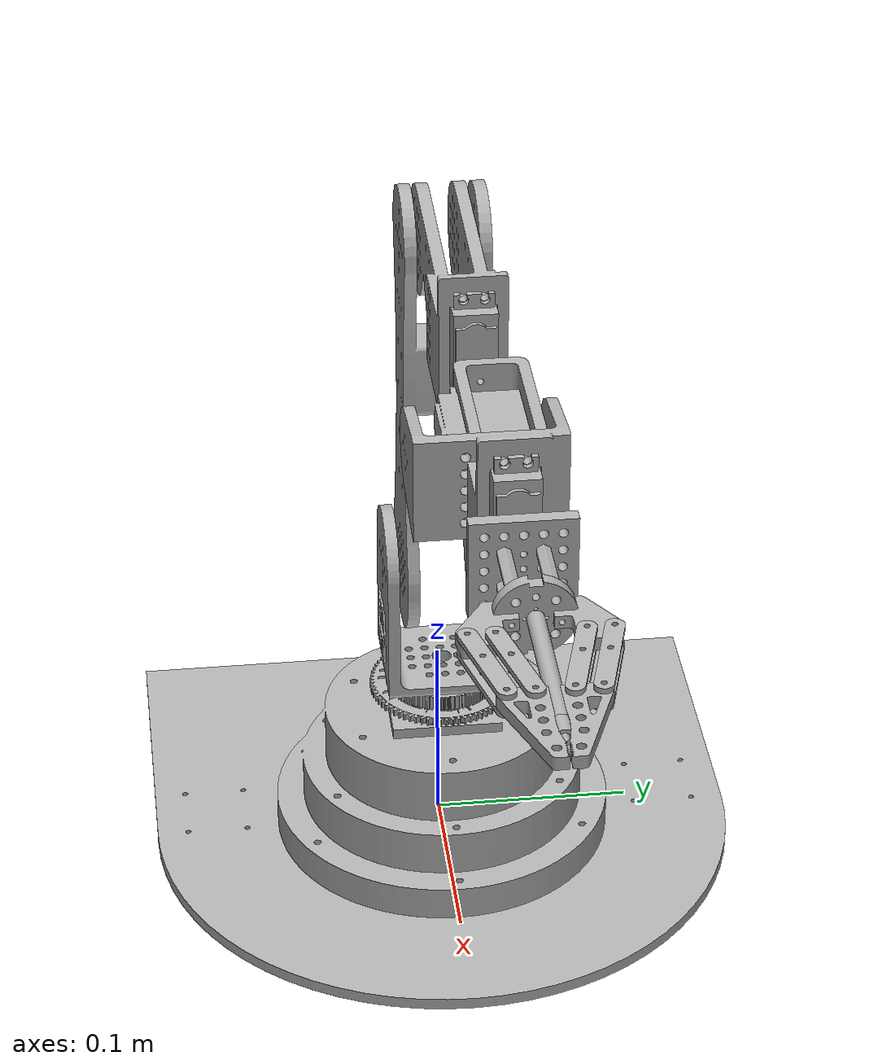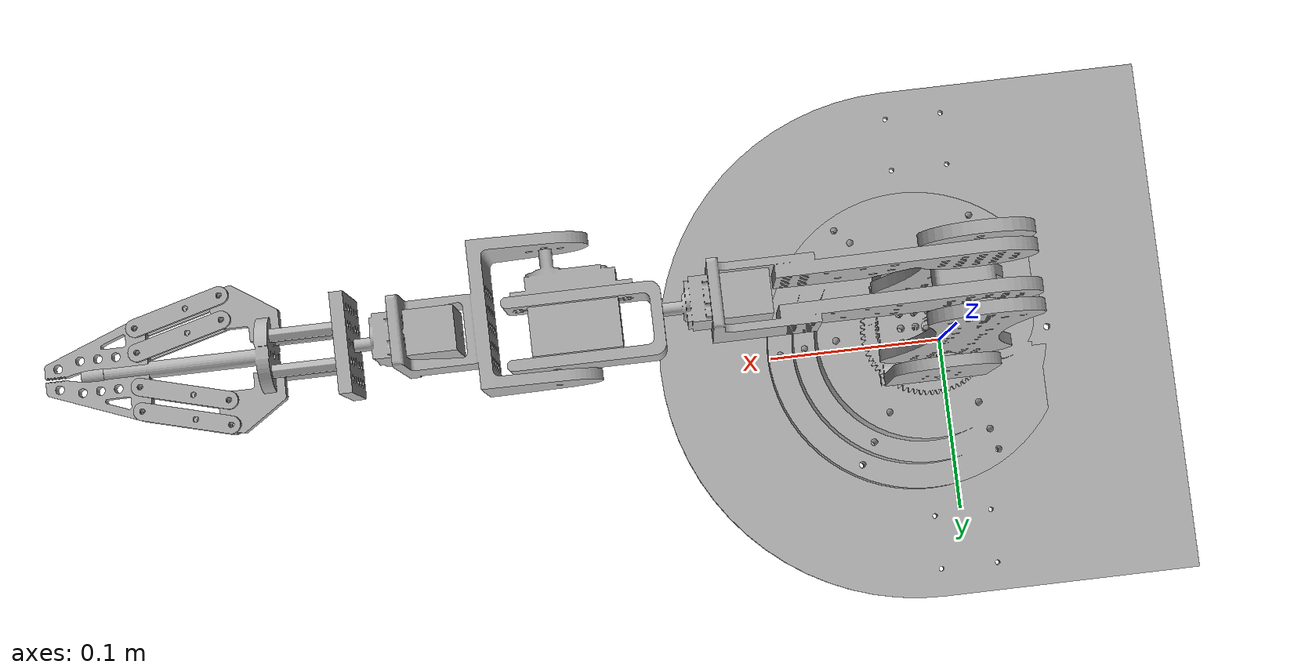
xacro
<?xml version="1.0" ?>
<robot name="ra6" xmlns:xacro="http://www.ros.org/wiki/xacro">
constant double pi = 3.14
<xacro:include filename="$(find ra6_description)/urdf/materials.xacro" />
<xacro:include filename="$(find ra6_description)/urdf/ra6.trans" />
<xacro:include filename="$(find ra6_description)/urdf/ra6.gazebo" />
<link name="world" />

  <joint name="world_joint" type="fixed">
    <parent link="world" />
    <child link = "base_link" />
    <origin xyz="0.0 0.0 0.0" rpy="0.0 0.0 0.0" />
  </joint>

<link name="base_link">
  <inertial>
    <origin rpy="0 0 0" xyz="0.001945238815569592 2.5277680393287483e-10 0.0029999999999930347"/>
    <mass value="0.5695940432953642"/>
    <inertia ixx="0.003816" ixy="0.0" ixz="0.0" iyy="0.003709" iyz="0.0" izz="0.007522"/>
  </inertial>
  <visual>
    <origin rpy="0 0 0" xyz="0 0 0"/>
    <geometry>
      <mesh filename="package://ra6_description/meshes/base_link.stl" scale="0.001 0.001 0.001"/>
    </geometry>
    <material name="silver"/>
  </visual>
  <collision>
    <origin rpy="0 0 0" xyz="0 0 0"/>
    <geometry>
      <mesh filename="package://ra6_description/meshes/base_link.stl" scale="0.001 0.001 0.001"/>
    </geometry>
  </collision>
</link>

<link name="link_1_1">
  <inertial>
    <origin rpy="0 0 0" xyz="0.0047535352324167834 1.8697271685685592e-10 0.032315463866336866"/>
    <mass value="0.986632768311051"/>
    <inertia ixx="0.002238" ixy="0.0" ixz="4.5e-05" iyy="0.001937" iyz="0.0" izz="0.003229"/>
  </inertial>
  <visual>
    <origin rpy="0 0 0" xyz="-0.016 -0.0 -0.006"/>
    <geometry>
      <mesh filename="package://ra6_description/meshes/link_1_1.stl" scale="0.001 0.001 0.001"/>
    </geometry>
    <material name="silver"/>
  </visual>
  <collision>
    <origin rpy="0 0 0" xyz="-0.016 -0.0 -0.006"/>
    <geometry>
      <mesh filename="package://ra6_description/meshes/link_1_1.stl" scale="0.001 0.001 0.001"/>
    </geometry>
  </collision>
</link>

<link name="link_2_1">
  <inertial>
    <origin rpy="0 0 0" xyz="-4.917767261157502e-07 1.868783618167755e-10 0.011643712562805747"/>
    <mass value="0.1359095393443759"/>
    <inertia ixx="1.6e-05" ixy="0.0" ixz="0.0" iyy="1.6e-05" iyz="0.0" izz="1.9e-05"/>
  </inertial>
  <visual>
    <origin rpy="0 0 0" xyz="-0.016 -0.0 -0.066"/>
    <geometry>
      <mesh filename="package://ra6_description/meshes/link_2_1.stl" scale="0.001 0.001 0.001"/>
    </geometry>
    <material name="silver"/>
  </visual>
  <collision>
    <origin rpy="0 0 0" xyz="-0.016 -0.0 -0.066"/>
    <geometry>
      <mesh filename="package://ra6_description/meshes/link_2_1.stl" scale="0.001 0.001 0.001"/>
    </geometry>
  </collision>
</link>

<link name="link_3_1">
  <inertial>
    <origin rpy="0 0 0" xyz="-5.1498464368957e-07 -3.4576515443776564e-05 0.03855502060775154"/>
    <mass value="0.734301344058547"/>
    <inertia ixx="0.0011" ixy="-0.0" ixz="0.0" iyy="0.000886" iyz="-4e-06" izz="0.000593"/>
  </inertial>
  <visual>
    <origin rpy="0 0 0" xyz="-0.016 -0.0 -0.09"/>
    <geometry>
      <mesh filename="package://ra6_description/meshes/link_3_1.stl" scale="0.001 0.001 0.001"/>
    </geometry>
    <material name="silver"/>
  </visual>
  <collision>
    <origin rpy="0 0 0" xyz="-0.016 -0.0 -0.09"/>
    <geometry>
      <mesh filename="package://ra6_description/meshes/link_3_1.stl" scale="0.001 0.001 0.001"/>
    </geometry>
  </collision>
</link>

<link name="link_4_1">
  <inertial>
    <origin rpy="0 0 0" xyz="-4.917794473036086e-07 -0.0014999998130873285 -5.1586790394964055e-12"/>
    <mass value="0.0015536746468328695"/>
    <inertia ixx="0.0" ixy="0.0" ixz="0.0" iyy="0.0" iyz="0.0" izz="0.0"/>
  </inertial>
  <visual>
    <origin rpy="0 0 0" xyz="-0.016 -0.024 -0.1685"/>
    <geometry>
      <mesh filename="package://ra6_description/meshes/link_4_1.stl" scale="0.001 0.001 0.001"/>
    </geometry>
    <material name="silver"/>
  </visual>
  <collision>
    <origin rpy="0 0 0" xyz="-0.016 -0.024 -0.1685"/>
    <geometry>
      <mesh filename="package://ra6_description/meshes/link_4_1.stl" scale="0.001 0.001 0.001"/>
    </geometry>
  </collision>
</link>

<link name="link_5_1">
  <inertial>
    <origin rpy="0 0 0" xyz="2.5550228582492396e-05 -0.02074999941018064 0.08450695857810112"/>
    <mass value="0.18341801530628282"/>
    <inertia ixx="0.00083" ixy="-0.0" ixz="-0.0" iyy="0.000814" iyz="0.0" izz="8.3e-05"/>
  </inertial>
  <visual>
    <origin rpy="0 0 0" xyz="-0.016 -0.021 -0.1685"/>
    <geometry>
      <mesh filename="package://ra6_description/meshes/link_5_1.stl" scale="0.001 0.001 0.001"/>
    </geometry>
    <material name="silver"/>
  </visual>
  <collision>
    <origin rpy="0 0 0" xyz="-0.016 -0.021 -0.1685"/>
    <geometry>
      <mesh filename="package://ra6_description/meshes/link_5_1.stl" scale="0.001 0.001 0.001"/>
    </geometry>
  </collision>
</link>

<link name="link_6_1">
  <inertial>
    <origin rpy="0 0 0" xyz="-4.917651489078079e-07 -0.0014999998130856788 -3.82598952519686e-11"/>
    <mass value="0.0015536746468328695"/>
    <inertia ixx="0.0" ixy="0.0" ixz="0.0" iyy="0.0" iyz="0.0" izz="0.0"/>
  </inertial>
  <visual>
    <origin rpy="0 0 0" xyz="-0.016 -0.015 -0.3485"/>
    <geometry>
      <mesh filename="package://ra6_description/meshes/link_6_1.stl" scale="0.001 0.001 0.001"/>
    </geometry>
    <material name="silver"/>
  </visual>
  <collision>
    <origin rpy="0 0 0" xyz="-0.016 -0.015 -0.3485"/>
    <geometry>
      <mesh filename="package://ra6_description/meshes/link_6_1.stl" scale="0.001 0.001 0.001"/>
    </geometry>
  </collision>
</link>

<link name="link_7_1">
  <inertial>
    <origin rpy="0 0 0" xyz="0.050456556016615556 -0.011710659258667289 0.0013142964981623928"/>
    <mass value="0.08989065409828118"/>
    <inertia ixx="2.9e-05" ixy="1e-06" ixz="-4e-06" iyy="0.000181" iyz="0.0" izz="0.000171"/>
  </inertial>
  <visual>
    <origin rpy="0 0 0" xyz="-0.016 -0.012 -0.3485"/>
    <geometry>
      <mesh filename="package://ra6_description/meshes/link_7_1.stl" scale="0.001 0.001 0.001"/>
    </geometry>
    <material name="silver"/>
  </visual>
  <collision>
    <origin rpy="0 0 0" xyz="-0.016 -0.012 -0.3485"/>
    <geometry>
      <mesh filename="package://ra6_description/meshes/link_7_1.stl" scale="0.001 0.001 0.001"/>
    </geometry>
  </collision>
</link>

<link name="link_8_1">
  <inertial>
    <origin rpy="0 0 0" xyz="-0.00805656894949483 0.004750000186925427 -0.02464885625301999"/>
    <mass value="0.2407180144714228"/>
    <inertia ixx="4.2e-05" ixy="0.0" ixz="1e-06" iyy="6.3e-05" iyz="0.0" izz="3.7e-05"/>
  </inertial>
  <visual>
    <origin rpy="0 0 0" xyz="-0.138641 0.00475 -0.383109"/>
    <geometry>
      <mesh filename="package://ra6_description/meshes/link_8_1.stl" scale="0.001 0.001 0.001"/>
    </geometry>
    <material name="silver"/>
  </visual>
  <collision>
    <origin rpy="0 0 0" xyz="-0.138641 0.00475 -0.383109"/>
    <geometry>
      <mesh filename="package://ra6_description/meshes/link_8_1.stl" scale="0.001 0.001 0.001"/>
    </geometry>
  </collision>
</link>

<link name="link_9_1">
  <inertial>
    <origin rpy="0 0 0" xyz="0.028870766333689513 0.007734910162192676 2.141239401898254e-07"/>
    <mass value="0.15826451533791172"/>
    <inertia ixx="4e-05" ixy="-5e-06" ixz="0.0" iyy="9.7e-05" iyz="0.0" izz="0.000108"/>
  </inertial>
  <visual>
    <origin rpy="0 0 0" xyz="-0.159641 -0.0 -0.3485"/>
    <geometry>
      <mesh filename="package://ra6_description/meshes/link_9_1.stl" scale="0.001 0.001 0.001"/>
    </geometry>
    <material name="silver"/>
  </visual>
  <collision>
    <origin rpy="0 0 0" xyz="-0.159641 -0.0 -0.3485"/>
    <geometry>
      <mesh filename="package://ra6_description/meshes/link_9_1.stl" scale="0.001 0.001 0.001"/>
    </geometry>
  </collision>
</link>

<link name="link_10_1">
  <inertial>
    <origin rpy="0 0 0" xyz="-0.024351421647754695 0.00805617844477384 -0.004749786152643376"/>
    <mass value="0.2407180144714228"/>
    <inertia ixx="3.7e-05" ixy="1e-06" ixz="-0.0" iyy="4.2e-05" iyz="-0.0" izz="6.3e-05"/>
  </inertial>
  <visual>
    <origin rpy="0 0 0" xyz="-0.223391 0.012 -0.3535"/>
    <geometry>
      <mesh filename="package://ra6_description/meshes/link_10_1.stl" scale="0.001 0.001 0.001"/>
    </geometry>
    <material name="silver"/>
  </visual>
  <collision>
    <origin rpy="0 0 0" xyz="-0.223391 0.012 -0.3535"/>
    <geometry>
      <mesh filename="package://ra6_description/meshes/link_10_1.stl" scale="0.001 0.001 0.001"/>
    </geometry>
  </collision>
</link>

<link name="link_11_1">
  <inertial>
    <origin rpy="0 0 0" xyz="0.02892119873863902 0.02941371914384374 0.0011736127180591582"/>
    <mass value="0.39249068379170354"/>
    <inertia ixx="0.000282" ixy="-1.3e-05" ixz="-1.7e-05" iyy="0.000264" iyz="-2e-06" izz="0.000382"/>
  </inertial>
  <visual>
    <origin rpy="0 0 0" xyz="-0.209 0.033 -0.34875"/>
    <geometry>
      <mesh filename="package://ra6_description/meshes/link_11_1.stl" scale="0.001 0.001 0.001"/>
    </geometry>
    <material name="silver"/>
  </visual>
  <collision>
    <origin rpy="0 0 0" xyz="-0.209 0.033 -0.34875"/>
    <geometry>
      <mesh filename="package://ra6_description/meshes/link_11_1.stl" scale="0.001 0.001 0.001"/>
    </geometry>
  </collision>
</link>

<link name="link_12_1">
  <inertial>
    <origin rpy="0 0 0" xyz="-0.008056670005951172 0.0047492265461918535 -0.024648856254397666"/>
    <mass value="0.24071801447142827"/>
    <inertia ixx="4.2e-05" ixy="0.0" ixz="1e-06" iyy="6.3e-05" iyz="-0.0" izz="3.7e-05"/>
  </inertial>
  <visual>
    <origin rpy="0 0 0" xyz="-0.277154 0.004749 -0.383359"/>
    <geometry>
      <mesh filename="package://ra6_description/meshes/link_12_1.stl" scale="0.001 0.001 0.001"/>
    </geometry>
    <material name="silver"/>
  </visual>
  <collision>
    <origin rpy="0 0 0" xyz="-0.277154 0.004749 -0.383359"/>
    <geometry>
      <mesh filename="package://ra6_description/meshes/link_12_1.stl" scale="0.001 0.001 0.001"/>
    </geometry>
  </collision>
</link>

<link name="link_13_1">
  <inertial>
    <origin rpy="0 0 0" xyz="0.0029995082518731175 2.7483128905991805e-09 3.099602753342534e-05"/>
    <mass value="0.012367021038363606"/>
    <inertia ixx="4e-06" ixy="0.0" ixz="0.0" iyy="2e-06" iyz="0.0" izz="2e-06"/>
  </inertial>
  <visual>
    <origin rpy="0 0 0" xyz="-0.298154 -0.0 -0.34875"/>
    <geometry>
      <mesh filename="package://ra6_description/meshes/link_13_1.stl" scale="0.001 0.001 0.001"/>
    </geometry>
    <material name="silver"/>
  </visual>
  <collision>
    <origin rpy="0 0 0" xyz="-0.298154 -0.0 -0.34875"/>
    <geometry>
      <mesh filename="package://ra6_description/meshes/link_13_1.stl" scale="0.001 0.001 0.001"/>
    </geometry>
  </collision>
</link>

<link name="link_14_1_1">
  <inertial>
    <origin rpy="0 0 0" xyz="0.014999508251875071 1.8237243440931417e-07 3.951411851610409e-07"/>
    <mass value="0.004210216702735793"/>
    <inertia ixx="0.0" ixy="-0.0" ixz="-0.0" iyy="0.0" iyz="0.0" izz="0.0"/>
  </inertial>
  <visual>
    <origin rpy="0 0 0" xyz="-0.304154 0.008 -0.35675"/>
    <geometry>
      <mesh filename="package://ra6_description/meshes/link_14_1_1.stl" scale="0.001 0.001 0.001"/>
    </geometry>
    <material name="silver"/>
  </visual>
  <collision>
    <origin rpy="0 0 0" xyz="-0.304154 0.008 -0.35675"/>
    <geometry>
      <mesh filename="package://ra6_description/meshes/link_14_1_1.stl" scale="0.001 0.001 0.001"/>
    </geometry>
  </collision>
</link>

<link name="link_17_1_1">
  <inertial>
    <origin rpy="0 0 0" xyz="0.014999508251873683 1.823683721431657e-07 3.450940883054088e-08"/>
    <mass value="0.004210216702735813"/>
    <inertia ixx="0.0" ixy="0.0" ixz="0.0" iyy="0.0" iyz="-0.0" izz="0.0"/>
  </inertial>
  <visual>
    <origin rpy="0 0 0" xyz="-0.304154 -0.008 -0.35675"/>
    <geometry>
      <mesh filename="package://ra6_description/meshes/link_17_1_1.stl" scale="0.001 0.001 0.001"/>
    </geometry>
    <material name="silver"/>
  </visual>
  <collision>
    <origin rpy="0 0 0" xyz="-0.304154 -0.008 -0.35675"/>
    <geometry>
      <mesh filename="package://ra6_description/meshes/link_17_1_1.stl" scale="0.001 0.001 0.001"/>
    </geometry>
  </collision>
</link>

<link name="link_16_1_1">
  <inertial>
    <origin rpy="0 0 0" xyz="0.014999508251861915 -1.7826318571625976e-07 3.4513266577995694e-08"/>
    <mass value="0.004210216702735724"/>
    <inertia ixx="0.0" ixy="0.0" ixz="0.0" iyy="0.0" iyz="-0.0" izz="0.0"/>
  </inertial>
  <visual>
    <origin rpy="0 0 0" xyz="-0.304154 -0.008 -0.34075"/>
    <geometry>
      <mesh filename="package://ra6_description/meshes/link_16_1_1.stl" scale="0.001 0.001 0.001"/>
    </geometry>
    <material name="silver"/>
  </visual>
  <collision>
    <origin rpy="0 0 0" xyz="-0.304154 -0.008 -0.34075"/>
    <geometry>
      <mesh filename="package://ra6_description/meshes/link_16_1_1.stl" scale="0.001 0.001 0.001"/>
    </geometry>
  </collision>
</link>

<link name="link_15_1_1">
  <inertial>
    <origin rpy="0 0 0" xyz="0.01499950825187396 -1.7825934290303935e-07 3.9514524946548946e-07"/>
    <mass value="0.004210216702735813"/>
    <inertia ixx="0.0" ixy="-0.0" ixz="-0.0" iyy="0.0" iyz="0.0" izz="0.0"/>
  </inertial>
  <visual>
    <origin rpy="0 0 0" xyz="-0.304154 0.008 -0.34075"/>
    <geometry>
      <mesh filename="package://ra6_description/meshes/link_15_1_1.stl" scale="0.001 0.001 0.001"/>
    </geometry>
    <material name="silver"/>
  </visual>
  <collision>
    <origin rpy="0 0 0" xyz="-0.304154 0.008 -0.34075"/>
    <geometry>
      <mesh filename="package://ra6_description/meshes/link_15_1_1.stl" scale="0.001 0.001 0.001"/>
    </geometry>
  </collision>
</link>

<link name="link_18_1_1">
  <inertial>
    <origin rpy="0 0 0" xyz="0.015547161746092164 0.008000182364381977 0.008000034505160958"/>
    <mass value="0.05178045653886038"/>
    <inertia ixx="5e-06" ixy="-0.0" ixz="0.0" iyy="2.6e-05" iyz="-0.0" izz="2.6e-05"/>
  </inertial>
  <visual>
    <origin rpy="0 0 0" xyz="-0.334154 0.008 -0.34075"/>
    <geometry>
      <mesh filename="package://ra6_description/meshes/link_18_1_1.stl" scale="0.001 0.001 0.001"/>
    </geometry>
    <material name="silver"/>
  </visual>
  <collision>
    <origin rpy="0 0 0" xyz="-0.334154 0.008 -0.34075"/>
    <geometry>
      <mesh filename="package://ra6_description/meshes/link_18_1_1.stl" scale="0.001 0.001 0.001"/>
    </geometry>
  </collision>
</link>

<link name="gripper_target_1">
  <inertial>
    <origin rpy="0 0 0" xyz="0.004999508251875229 1.8236421677642057e-07 3.4505133750251105e-08"/>
    <mass value="0.0024815636720248164"/>
    <inertia ixx="0.0" ixy="-0.0" ixz="-0.0" iyy="0.0" iyz="0.0" izz="0.0"/>
  </inertial>
  <visual>
    <origin rpy="0 0 0" xyz="-0.409854 -0.0 -0.34875"/>
    <geometry>
      <mesh filename="package://ra6_description/meshes/gripper_target_1.stl" scale="0.001 0.001 0.001"/>
    </geometry>
    <material name="silver"/>
  </visual>
  <collision>
    <origin rpy="0 0 0" xyz="-0.409854 -0.0 -0.34875"/>
    <geometry>
      <mesh filename="package://ra6_description/meshes/gripper_target_1.stl" scale="0.001 0.001 0.001"/>
    </geometry>
  </collision>
</link>

<link name="link_20_1_1">
  <inertial>
    <origin rpy="0 0 0" xyz="0.00629104735002789 -0.010887766219289859 9.761123863638588e-07"/>
    <mass value="0.020828714015555368"/>
    <inertia ixx="1e-06" ixy="0.0" ixz="-0.0" iyy="1e-06" iyz="0.0" izz="2e-06"/>
  </inertial>
  <visual>
    <origin rpy="0 0 0" xyz="-0.339854 0.01 -0.34875"/>
    <geometry>
      <mesh filename="package://ra6_description/meshes/link_20_1_1.stl" scale="0.001 0.001 0.001"/>
    </geometry>
    <material name="silver"/>
  </visual>
  <collision>
    <origin rpy="0 0 0" xyz="-0.339854 0.01 -0.34875"/>
    <geometry>
      <mesh filename="package://ra6_description/meshes/link_20_1_1.stl" scale="0.001 0.001 0.001"/>
    </geometry>
  </collision>
</link>

<link name="link_29_1_1">
  <inertial>
    <origin rpy="0 0 0" xyz="0.019375917383458563 0.005192262634086359 0.001249611877207124"/>
    <mass value="0.0069538755511859"/>
    <inertia ixx="0.0" ixy="-0.0" ixz="0.0" iyy="1e-06" iyz="0.0" izz="1e-06"/>
  </inertial>
  <visual>
    <origin rpy="0 0 0" xyz="-0.355254 0.018 -0.351651"/>
    <geometry>
      <mesh filename="package://ra6_description/meshes/link_29_1_1.stl" scale="0.001 0.001 0.001"/>
    </geometry>
    <material name="silver"/>
  </visual>
  <collision>
    <origin rpy="0 0 0" xyz="-0.355254 0.018 -0.351651"/>
    <geometry>
      <mesh filename="package://ra6_description/meshes/link_29_1_1.stl" scale="0.001 0.001 0.001"/>
    </geometry>
  </collision>
</link>

<link name="link_26_1_1">
  <inertial>
    <origin rpy="0 0 0" xyz="0.003921917383460205 0.0010508884786165178 -0.0012503881143609008"/>
    <mass value="0.006953875551185689"/>
    <inertia ixx="0.0" ixy="-0.0" ixz="0.0" iyy="1e-06" iyz="0.0" izz="1e-06"/>
  </inertial>
  <visual>
    <origin rpy="0 0 0" xyz="-0.370708 0.013859 -0.345851"/>
    <geometry>
      <mesh filename="package://ra6_description/meshes/link_26_1_1.stl" scale="0.001 0.001 0.001"/>
    </geometry>
    <material name="silver"/>
  </visual>
  <collision>
    <origin rpy="0 0 0" xyz="-0.370708 0.013859 -0.345851"/>
    <geometry>
      <mesh filename="package://ra6_description/meshes/link_26_1_1.stl" scale="0.001 0.001 0.001"/>
    </geometry>
  </collision>
</link>

<link name="link_30_1_1">
  <inertial>
    <origin rpy="0 0 0" xyz="0.014180248010196572 -0.0015595731572521166 -0.002899550463790035"/>
    <mass value="0.02426100448501166"/>
    <inertia ixx="1e-06" ixy="-1e-06" ixz="0.0" iyy="4e-06" iyz="0.0" izz="5e-06"/>
  </inertial>
  <visual>
    <origin rpy="0 0 0" xyz="-0.393891 0.007647 -0.35165"/>
    <geometry>
      <mesh filename="package://ra6_description/meshes/link_30_1_1.stl" scale="0.001 0.001 0.001"/>
    </geometry>
    <material name="silver"/>
  </visual>
  <collision>
    <origin rpy="0 0 0" xyz="-0.393891 0.007647 -0.35165"/>
    <geometry>
      <mesh filename="package://ra6_description/meshes/link_30_1_1.stl" scale="0.001 0.001 0.001"/>
    </geometry>
  </collision>
</link>

<link name="link_28_1_1">
  <inertial>
    <origin rpy="0 0 0" xyz="-0.01926108261654219 -0.005160737354737887 0.0012501077459002863"/>
    <mass value="0.006953875551185901"/>
    <inertia ixx="0.0" ixy="-0.0" ixz="0.0" iyy="1e-06" iyz="0.0" izz="1e-06"/>
  </inertial>
  <visual>
    <origin rpy="0 0 0" xyz="-0.393891 0.018647 -0.351651"/>
    <geometry>
      <mesh filename="package://ra6_description/meshes/link_28_1_1.stl" scale="0.001 0.001 0.001"/>
    </geometry>
    <material name="silver"/>
  </visual>
  <collision>
    <origin rpy="0 0 0" xyz="-0.393891 0.018647 -0.351651"/>
    <geometry>
      <mesh filename="package://ra6_description/meshes/link_28_1_1.stl" scale="0.001 0.001 0.001"/>
    </geometry>
  </collision>
</link>

<link name="link_27_1_1">
  <inertial>
    <origin rpy="0 0 0" xyz="-0.01926108261654008 -0.005161111510206727 -0.0012498922456677386"/>
    <mass value="0.006953875551185678"/>
    <inertia ixx="0.0" ixy="-0.0" ixz="0.0" iyy="1e-06" iyz="0.0" izz="1e-06"/>
  </inertial>
  <visual>
    <origin rpy="0 0 0" xyz="-0.393891 0.018647 -0.345851"/>
    <geometry>
      <mesh filename="package://ra6_description/meshes/link_27_1_1.stl" scale="0.001 0.001 0.001"/>
    </geometry>
    <material name="silver"/>
  </visual>
  <collision>
    <origin rpy="0 0 0" xyz="-0.393891 0.018647 -0.345851"/>
    <geometry>
      <mesh filename="package://ra6_description/meshes/link_27_1_1.stl" scale="0.001 0.001 0.001"/>
    </geometry>
  </collision>
</link>

<link name="link_19_1_1">
  <inertial>
    <origin rpy="0 0 0" xyz="0.0062910473500270014 0.010888130947902539 -9.07102123415271e-07"/>
    <mass value="0.02082871401555506"/>
    <inertia ixx="1e-06" ixy="-0.0" ixz="0.0" iyy="1e-06" iyz="0.0" izz="2e-06"/>
  </inertial>
  <visual>
    <origin rpy="0 0 0" xyz="-0.339854 -0.01 -0.34875"/>
    <geometry>
      <mesh filename="package://ra6_description/meshes/link_19_1_1.stl" scale="0.001 0.001 0.001"/>
    </geometry>
    <material name="silver"/>
  </visual>
  <collision>
    <origin rpy="0 0 0" xyz="-0.339854 -0.01 -0.34875"/>
    <geometry>
      <mesh filename="package://ra6_description/meshes/link_19_1_1.stl" scale="0.001 0.001 0.001"/>
    </geometry>
  </collision>
</link>

<link name="link_22_1_1">
  <inertial>
    <origin rpy="0 0 0" xyz="0.019375917383459895 -0.005191523750004619 0.0012504571246251261"/>
    <mass value="0.00695387555118572"/>
    <inertia ixx="0.0" ixy="0.0" ixz="-0.0" iyy="1e-06" iyz="0.0" izz="1e-06"/>
  </inertial>
  <visual>
    <origin rpy="0 0 0" xyz="-0.355254 -0.018 -0.351649"/>
    <geometry>
      <mesh filename="package://ra6_description/meshes/link_22_1_1.stl" scale="0.001 0.001 0.001"/>
    </geometry>
    <material name="silver"/>
  </visual>
  <collision>
    <origin rpy="0 0 0" xyz="-0.355254 -0.018 -0.351649"/>
    <geometry>
      <mesh filename="package://ra6_description/meshes/link_22_1_1.stl" scale="0.001 0.001 0.001"/>
    </geometry>
  </collision>
</link>

<link name="link_21_1_1">
  <inertial>
    <origin rpy="0 0 0" xyz="0.003921917383460427 -0.0010508979054732904 -0.0012495428669420106"/>
    <mass value="0.006953875551185719"/>
    <inertia ixx="0.0" ixy="0.0" ixz="-0.0" iyy="1e-06" iyz="0.0" izz="1e-06"/>
  </inertial>
  <visual>
    <origin rpy="0 0 0" xyz="-0.370708 -0.013859 -0.345849"/>
    <geometry>
      <mesh filename="package://ra6_description/meshes/link_21_1_1.stl" scale="0.001 0.001 0.001"/>
    </geometry>
    <material name="silver"/>
  </visual>
  <collision>
    <origin rpy="0 0 0" xyz="-0.370708 -0.013859 -0.345849"/>
    <geometry>
      <mesh filename="package://ra6_description/meshes/link_21_1_1.stl" scale="0.001 0.001 0.001"/>
    </geometry>
  </collision>
</link>

<link name="link_25_1_1">
  <inertial>
    <origin rpy="0 0 0" xyz="0.014180248010197738 0.0015589378858647963 -0.00290038052594227"/>
    <mass value="0.02426100448501151"/>
    <inertia ixx="1e-06" ixy="1e-06" ixz="-0.0" iyy="4e-06" iyz="0.0" izz="5e-06"/>
  </inertial>
  <visual>
    <origin rpy="0 0 0" xyz="-0.393891 -0.007648 -0.35165"/>
    <geometry>
      <mesh filename="package://ra6_description/meshes/link_25_1_1.stl" scale="0.001 0.001 0.001"/>
    </geometry>
    <material name="silver"/>
  </visual>
  <collision>
    <origin rpy="0 0 0" xyz="-0.393891 -0.007648 -0.35165"/>
    <geometry>
      <mesh filename="package://ra6_description/meshes/link_25_1_1.stl" scale="0.001 0.001 0.001"/>
    </geometry>
  </collision>
</link>

<link name="link_24_1_1">
  <inertial>
    <origin rpy="0 0 0" xyz="-0.019261082616541803 0.0051604762388191595 0.001249961255932408"/>
    <mass value="0.00695387555118585"/>
    <inertia ixx="0.0" ixy="0.0" ixz="-0.0" iyy="1e-06" iyz="0.0" izz="1e-06"/>
  </inertial>
  <visual>
    <origin rpy="0 0 0" xyz="-0.393891 -0.018648 -0.351649"/>
    <geometry>
      <mesh filename="package://ra6_description/meshes/link_24_1_1.stl" scale="0.001 0.001 0.001"/>
    </geometry>
    <material name="silver"/>
  </visual>
  <collision>
    <origin rpy="0 0 0" xyz="-0.393891 -0.018648 -0.351649"/>
    <geometry>
      <mesh filename="package://ra6_description/meshes/link_24_1_1.stl" scale="0.001 0.001 0.001"/>
    </geometry>
  </collision>
</link>

<link name="link_23_1_1">
  <inertial>
    <origin rpy="0 0 0" xyz="-0.019261082616541192 0.005161102083350282 -0.0012500387356346732"/>
    <mass value="0.0069538755511858695"/>
    <inertia ixx="0.0" ixy="0.0" ixz="-0.0" iyy="1e-06" iyz="0.0" izz="1e-06"/>
  </inertial>
  <visual>
    <origin rpy="0 0 0" xyz="-0.393891 -0.018647 -0.345849"/>
    <geometry>
      <mesh filename="package://ra6_description/meshes/link_23_1_1.stl" scale="0.001 0.001 0.001"/>
    </geometry>
    <material name="silver"/>
  </visual>
  <collision>
    <origin rpy="0 0 0" xyz="-0.393891 -0.018647 -0.345849"/>
    <geometry>
      <mesh filename="package://ra6_description/meshes/link_23_1_1.stl" scale="0.001 0.001 0.001"/>
    </geometry>
  </collision>
</link>

<joint name="Rigid1" type="fixed">
  <origin rpy="0 0 0" xyz="0.016 0.0 0.006"/>
  <parent link="base_link"/>
  <child link="link_1_1"/>
</joint>

<joint name="Rigid2" type="fixed">
  <origin rpy="0 0 0" xyz="0.0 0.0 0.06"/>
  <parent link="link_1_1"/>
  <child link="link_2_1"/>
</joint>

<joint name="joint_1" type="revolute">
  <origin rpy="0 0 0" xyz="0.0 0.0 0.024"/>
  <parent link="link_2_1"/>
  <child link="link_3_1"/>
  <axis xyz="0.0 0.0 1.0"/>
  <limit effort="30" velocity="1.0" lower="-3.141" upper="3.141" />
</joint>

<joint name="Rigid4" type="fixed">
  <origin rpy="0 0 0" xyz="0.0 0.024 0.0785"/>
  <parent link="link_3_1"/>
  <child link="link_4_1"/>
</joint>

<joint name="joint_2" type="revolute">
  <origin rpy="0 0 0" xyz="0.0 -0.003 0.0"/>
  <parent link="link_4_1"/>
  <child link="link_5_1"/>
  <axis xyz="0.0 -1.0 -0.0"/>
  <limit effort="30" velocity="1.0" lower="-1.05" upper="1.3" />
</joint>

<joint name="Rigid6" type="fixed">
  <origin rpy="0 0 0" xyz="0.0 -0.006 0.18"/>
  <parent link="link_5_1"/>
  <child link="link_6_1"/>
</joint>

<joint name="joint_3" type="revolute">
  <origin rpy="0 0 0" xyz="0.0 -0.003 0.0"/>
  <parent link="link_6_1"/>
  <child link="link_7_1"/>
  <axis xyz="0.0 -1.0 0.0"/>
  <limit effort="30" velocity="1.0" lower="-0.785" upper="1.57" />
</joint>

<joint name="Rigid8" type="fixed">
  <origin rpy="0 0 0" xyz="0.122641 -0.01675 0.034609"/>
  <parent link="link_7_1"/>
  <child link="link_8_1"/>
</joint>

<joint name="joint_4" type="revolute">
  <origin rpy="0 0 0" xyz="0.021 0.00475 -0.034609"/>
  <parent link="link_8_1"/>
  <child link="link_9_1"/>
  <axis xyz="1.0 0.0 0.0"/>
  <limit effort="30" velocity="1.0" lower="-1.57" upper="1.57" />
</joint>

<joint name="Rigid10" type="fixed">
  <origin rpy="0 0 0" xyz="0.06375 -0.012 0.005"/>
  <parent link="link_9_1"/>
  <child link="link_10_1"/>
</joint>

<joint name="joint_5" type="revolute">
  <origin rpy="0 0 0" xyz="-0.014391 -0.021 -0.00475"/>
  <parent link="link_10_1"/>
  <child link="link_11_1"/>
  <axis xyz="-0.0 -1.0 -0.0"/>
  <limit effort="30" velocity="1.0" lower="-1.57" upper="1.57" />
</joint>

<joint name="Rigid12" type="fixed">
  <origin rpy="0 0 0" xyz="0.068154 0.028251 0.034609"/>
  <parent link="link_11_1"/>
  <child link="link_12_1"/>
</joint>

<joint name="joint_6" type="revolute">
  <origin rpy="0 0 0" xyz="0.021 0.004749 -0.034609"/>
  <parent link="link_12_1"/>
  <child link="link_13_1"/>
  <axis xyz="1.0 -0.0 0.0"/>
  <limit effort="30" velocity="1.0" lower="-1.57" upper="1.57" />
</joint>

<joint name="Rigid32" type="fixed">
  <origin rpy="0 0 0" xyz="0.006 -0.008 0.008"/>
  <parent link="link_13_1"/>
  <child link="link_14_1_1"/>
</joint>

<joint name="Rigid33" type="fixed">
  <origin rpy="0 0 0" xyz="0.006 0.008 0.008"/>
  <parent link="link_13_1"/>
  <child link="link_17_1_1"/>
</joint>

<joint name="Rigid34" type="fixed">
  <origin rpy="0 0 0" xyz="0.006 0.008 -0.008"/>
  <parent link="link_13_1"/>
  <child link="link_16_1_1"/>
</joint>

<joint name="Rigid35" type="fixed">
  <origin rpy="0 0 0" xyz="0.006 -0.008 -0.008"/>
  <parent link="link_13_1"/>
  <child link="link_15_1_1"/>
</joint>

<joint name="Rigid36" type="fixed">
  <origin rpy="0 0 0" xyz="0.03 0.0 0.0"/>
  <parent link="link_15_1_1"/>
  <child link="link_18_1_1"/>
</joint>

<joint name="Rigid37" type="fixed">
  <origin rpy="0 0 0" xyz="0.0757 0.008 0.008"/>
  <parent link="link_18_1_1"/>
  <child link="gripper_target_1"/>
</joint>

<joint name="Rigid38" type="fixed">
  <origin rpy="0 0 0" xyz="0.0057 -0.002 0.008"/>
  <parent link="link_18_1_1"/>
  <child link="link_20_1_1"/>
</joint>

<joint name="joint_7" type="continuous">
  <origin rpy="0 0 0" xyz="0.0154 -0.008 0.002901"/>
  <parent link="link_20_1_1"/>
  <child link="link_29_1_1"/>
  <axis xyz="-0.0 4.5e-05 1.0"/>
</joint>

<joint name="Rigid40" type="fixed">
  <origin rpy="0 0 0" xyz="0.015454 0.004141 -0.0058"/>
  <parent link="link_29_1_1"/>
  <child link="link_26_1_1"/>
</joint>

<joint name="Rigid41" type="fixed">
  <origin rpy="0 0 0" xyz="0.038637 0.010353 -1e-06"/>
  <parent link="link_29_1_1"/>
  <child link="link_30_1_1"/>
</joint>

<joint name="Rigid42" type="fixed">
  <origin rpy="0 0 0" xyz="0.0 -0.011 1e-06"/>
  <parent link="link_30_1_1"/>
  <child link="link_28_1_1"/>
</joint>

<joint name="Rigid43" type="fixed">
  <origin rpy="0 0 0" xyz="0.0 -0.011 -0.005799"/>
  <parent link="link_30_1_1"/>
  <child link="link_27_1_1"/>
</joint>

<joint name="Rigid44" type="fixed">
  <origin rpy="0 0 0" xyz="0.0057 0.018 0.008"/>
  <parent link="link_18_1_1"/>
  <child link="link_19_1_1"/>
</joint>

<joint name="joint_8" type="continuous">
  <origin rpy="0 0 0" xyz="0.0154 0.008 0.002899"/>
  <parent link="link_19_1_1"/>
  <child link="link_22_1_1"/>
  <axis xyz="-0.0 4.5e-05 1.0"/>
</joint>

<joint name="Rigid46" type="fixed">
  <origin rpy="0 0 0" xyz="0.015454 -0.004141 -0.0058"/>
  <parent link="link_22_1_1"/>
  <child link="link_21_1_1"/>
</joint>

<joint name="Rigid47" type="fixed">
  <origin rpy="0 0 0" xyz="0.038637 -0.010352 1e-06"/>
  <parent link="link_22_1_1"/>
  <child link="link_25_1_1"/>
</joint>

<joint name="Rigid48" type="fixed">
  <origin rpy="0 0 0" xyz="0.0 0.011 -1e-06"/>
  <parent link="link_25_1_1"/>
  <child link="link_24_1_1"/>
</joint>

<joint name="Rigid50" type="fixed">
  <origin rpy="0 0 0" xyz="0.0 0.010999 -0.005801"/>
  <parent link="link_25_1_1"/>
  <child link="link_23_1_1"/>
</joint>

</robot>

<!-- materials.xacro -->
<robot name="ra6" xmlns:xacro="http://www.ros.org/wiki/xacro" >

<material name="silver">
  <color rgba="0.700 0.700 0.700 1.000"/>
</material>

</robot>
